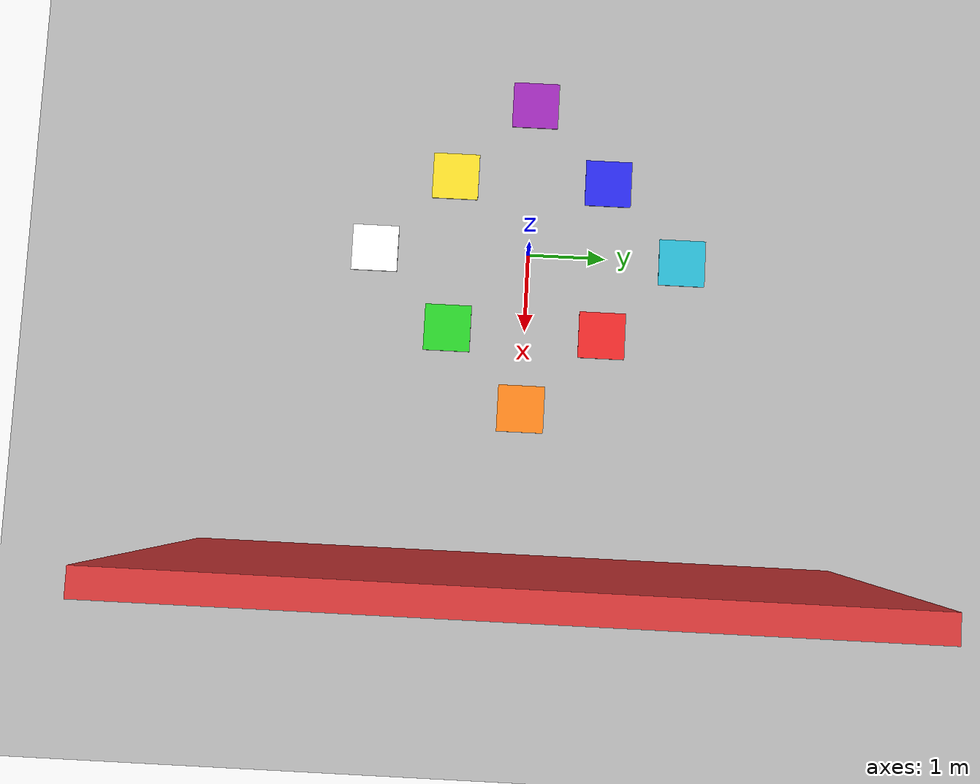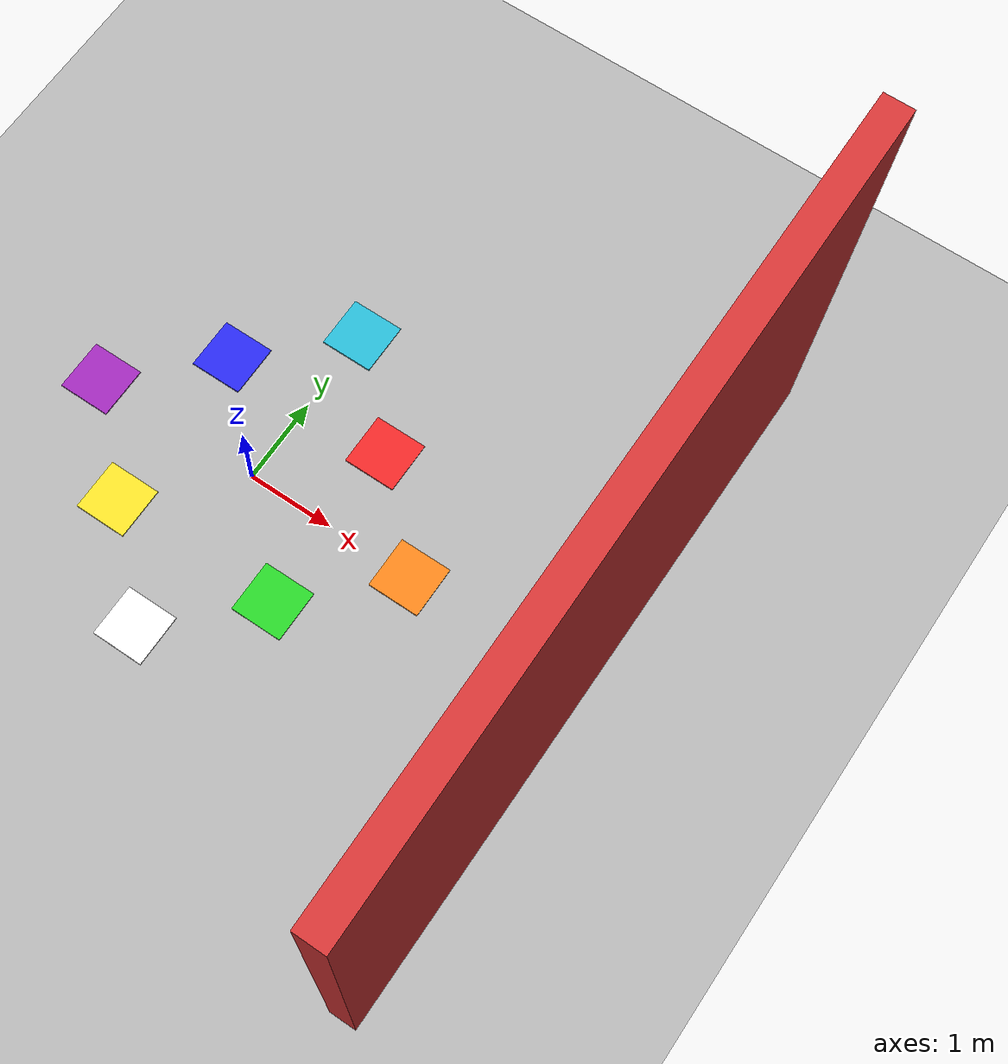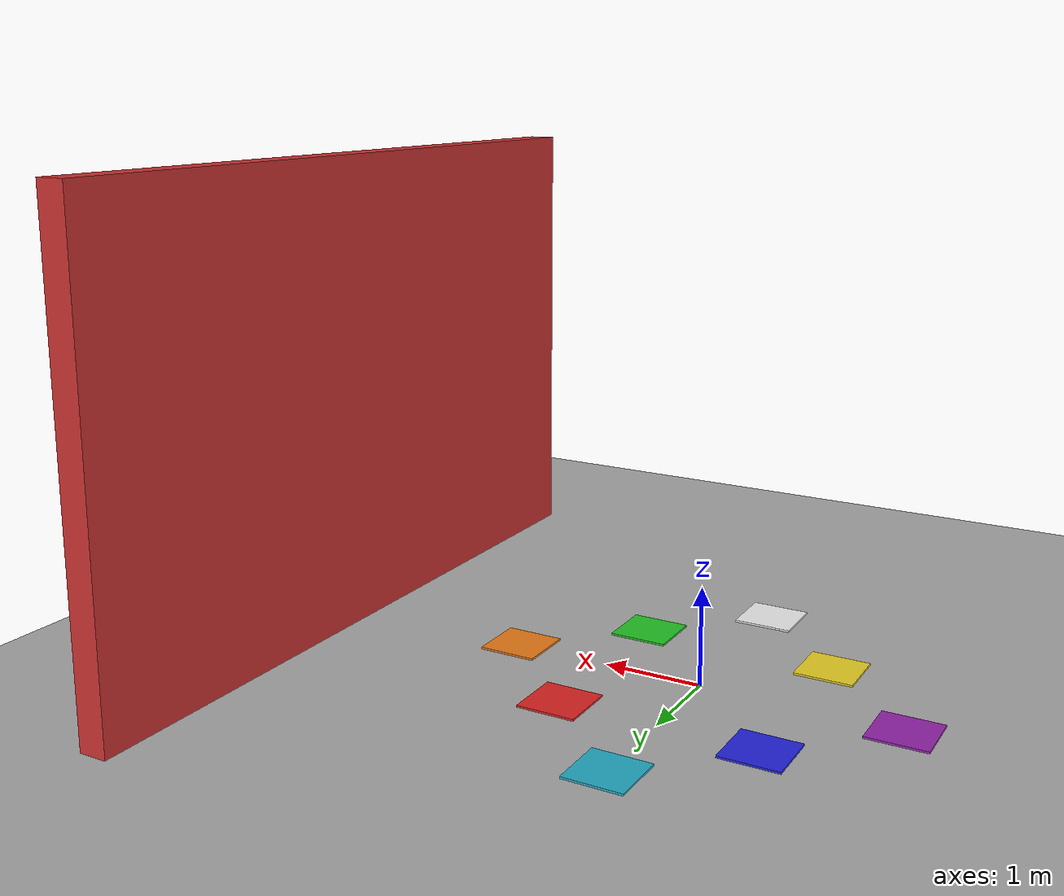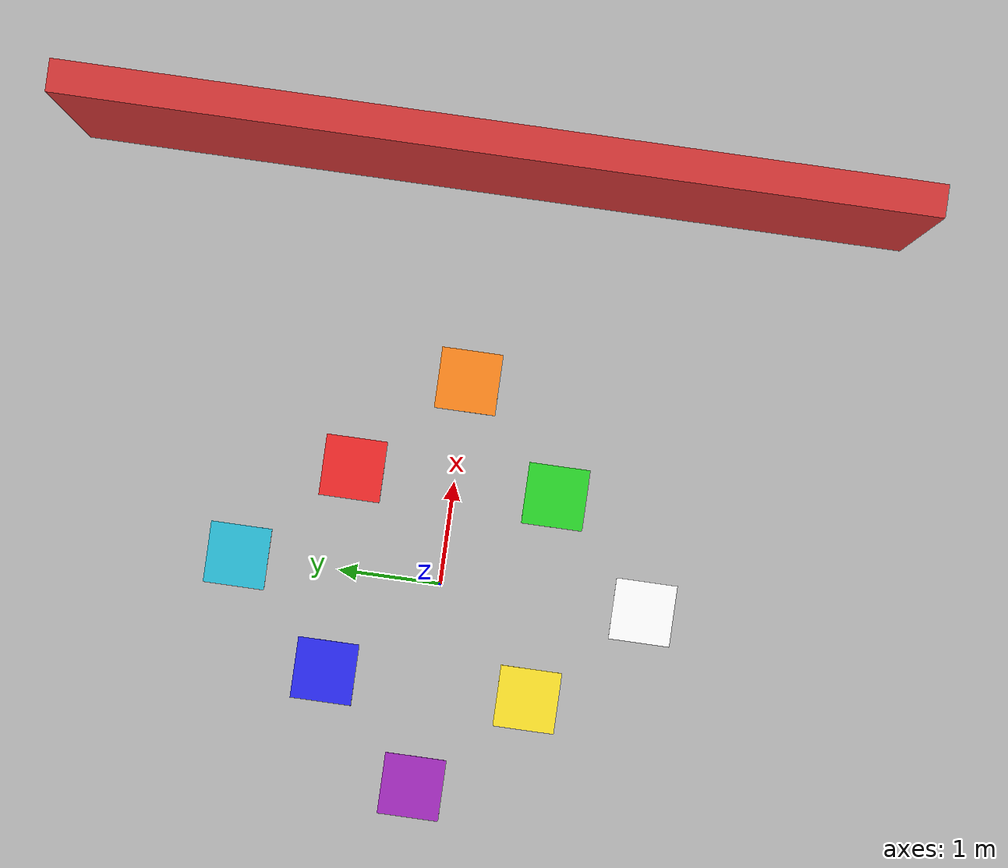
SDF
<?xml version="1.0" ?>
<sdf version="1.9">
  <world name="apf_arena">

    <gravity>0 0 -9.81</gravity>

    <physics name="default_physics" type="ode">
      <max_step_size>0.004</max_step_size>
      <real_time_factor>1.0</real_time_factor>
      <real_time_update_rate>250</real_time_update_rate>
    </physics>

    <scene>
      <ambient>0.75 0.75 0.75 1</ambient>
      <background>0.85 0.88 0.92 1</background>
      <shadows>false</shadows>
    </scene>

    <light name="sun" type="directional">
      <cast_shadows>false</cast_shadows>
      <pose>0 0 100 0 0 0</pose>
      <diffuse>0.95 0.95 0.95 1</diffuse>
      <specular>0.2 0.2 0.2 1</specular>
      <direction>-0.45 0.15 -0.88</direction>
    </light>

    <!-- Flat ground -->
    <model name="ground">
      <static>true</static>
      <link name="link">
        <collision name="collision">
          <geometry>
            <box><size>60 60 0.2</size></box>
          </geometry>
        </collision>
        <visual name="visual">
          <geometry>
            <box><size>60 60 0.2</size></box>
          </geometry>
          <material>
            <ambient>0.58 0.58 0.58 1</ambient>
            <diffuse>0.68 0.68 0.68 1</diffuse>
          </material>
        </visual>
      </link>
      <pose>0 0 -0.1 0 0 0</pose>
    </model>

    <model name="flow_marker_1"><static>true</static><link name="link">
      <visual name="visual"><geometry><box><size>0.6 0.6 0.02</size></box></geometry>
        <material><ambient>0.8 0.1 0.1 1</ambient><diffuse>0.9 0.15 0.15 1</diffuse></material></visual>
      <collision name="collision"><geometry><box><size>0.6 0.6 0.02</size></box></geometry></collision>
    </link><pose>1 1 0.01 0 0 0</pose></model>
    <model name="flow_marker_2"><static>true</static><link name="link">
      <visual name="visual"><geometry><box><size>0.6 0.6 0.02</size></box></geometry>
        <material><ambient>0.1 0.1 0.8 1</ambient><diffuse>0.15 0.15 0.9 1</diffuse></material></visual>
      <collision name="collision"><geometry><box><size>0.6 0.6 0.02</size></box></geometry></collision>
    </link><pose>-1 1 0.01 0 0 0</pose></model>
    <model name="flow_marker_3"><static>true</static><link name="link">
      <visual name="visual"><geometry><box><size>0.6 0.6 0.02</size></box></geometry>
        <material><ambient>0.1 0.7 0.1 1</ambient><diffuse>0.15 0.8 0.15 1</diffuse></material></visual>
      <collision name="collision"><geometry><box><size>0.6 0.6 0.02</size></box></geometry></collision>
    </link><pose>1 -1 0.01 0 0 0</pose></model>
    <model name="flow_marker_4"><static>true</static><link name="link">
      <visual name="visual"><geometry><box><size>0.6 0.6 0.02</size></box></geometry>
        <material><ambient>0.85 0.75 0.1 1</ambient><diffuse>0.95 0.85 0.15 1</diffuse></material></visual>
      <collision name="collision"><geometry><box><size>0.6 0.6 0.02</size></box></geometry></collision>
    </link><pose>-1 -1 0.01 0 0 0</pose></model>
    <model name="flow_marker_5"><static>true</static><link name="link">
      <visual name="visual"><geometry><box><size>0.6 0.6 0.02</size></box></geometry>
        <material><ambient>0.85 0.4 0.05 1</ambient><diffuse>0.95 0.5 0.1 1</diffuse></material></visual>
      <collision name="collision"><geometry><box><size>0.6 0.6 0.02</size></box></geometry></collision>
    </link><pose>2 0 0.01 0 0 0</pose></model>
    <model name="flow_marker_6"><static>true</static><link name="link">
      <visual name="visual"><geometry><box><size>0.6 0.6 0.02</size></box></geometry>
        <material><ambient>0.5 0.1 0.6 1</ambient><diffuse>0.6 0.15 0.7 1</diffuse></material></visual>
      <collision name="collision"><geometry><box><size>0.6 0.6 0.02</size></box></geometry></collision>
    </link><pose>-2 0 0.01 0 0 0</pose></model>
    <model name="flow_marker_7"><static>true</static><link name="link">
      <visual name="visual"><geometry><box><size>0.6 0.6 0.02</size></box></geometry>
        <material><ambient>0.1 0.6 0.7 1</ambient><diffuse>0.15 0.7 0.8 1</diffuse></material></visual>
      <collision name="collision"><geometry><box><size>0.6 0.6 0.02</size></box></geometry></collision>
    </link><pose>0 2 0.01 0 0 0</pose></model>
    <model name="flow_marker_8"><static>true</static><link name="link">
      <visual name="visual"><geometry><box><size>0.6 0.6 0.02</size></box></geometry>
        <material><ambient>0.9 0.9 0.9 1</ambient><diffuse>0.97 0.97 0.97 1</diffuse></material></visual>
      <collision name="collision"><geometry><box><size>0.6 0.6 0.02</size></box></geometry></collision>
    </link><pose>0 -2 0.01 0 0 0</pose></model>

    <model name="apf_wall">
      <static>true</static>
      <link name="link">
        <collision name="collision">
          <geometry>
            <box><size>0.3 8 5</size></box>
          </geometry>
        </collision>
        <visual name="visual">
          <geometry>
            <box><size>0.3 8 5</size></box>
          </geometry>
          <material>
            <ambient>0.7 0.15 0.15 1</ambient>
            <diffuse>0.8 0.2 0.2 1</diffuse>
          </material>
        </visual>
      </link>
      <pose>4 0 2.5 0 0 0</pose>
    </model>

  </world>
</sdf>
